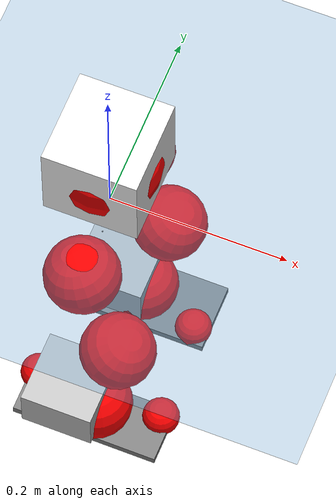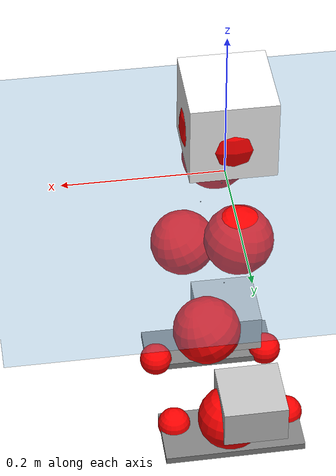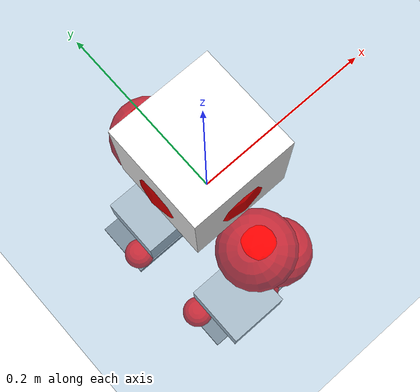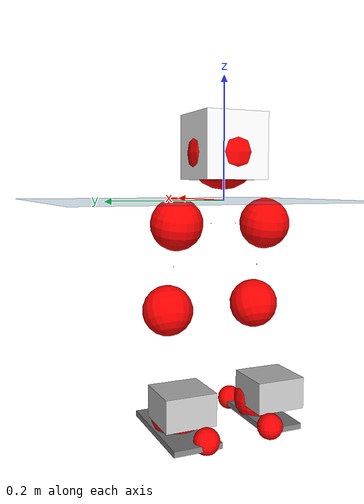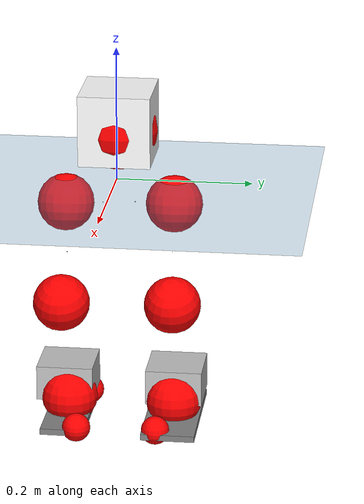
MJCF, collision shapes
<mujoco model="pi_12dof_release_v1">
  <compiler angle="radian" assetdir="assets" balanceinertia="true" inertiafromgeom="false"/>

  <option timestep="0.005" density="1.2" viscosity="2e-05"/>

  <size nkey="1"/>

  <visual>
    <quality shadowsize="8192"/>
    <map shadowclip="0.5"/>
  </visual>

  <default>
    <default class="/">
      <joint armature="0.01" damping="0.01" frictionloss="0.01"/>
      <geom contype="0" conaffinity="0" group="1" solref="-1000 -80"/>
      <site size="0.01 0.005 0.005" group="5"/>
      <general forcelimited="true" biastype="affine" gainprm="20" biasprm="0 -20 -0.5"/>
      <default class="foot">
        <geom size="0.0845 0.036 0.005" type="box" condim="6" group="4" priority="1" friction="0.9 0.2 0.2" solimp="0.015 1 0.005"/>
      </default>
      <default class="reward_collision_sphere">
        <geom group="5" rgba="1 0 0 1"/>
      </default>
    </default>
  </default>

  <asset>
    <texture type="skybox" colorspace="auto" name="//unnamed_texture_0" builtin="gradient" rgb1="0.95 0.95 0.95" rgb2="0.95 0.95 0.95" width="100" height="600"/>
    <texture type="2d" colorspace="auto" name="texplane" builtin="checker" rgb1="0.345 0.575 0.748" rgb2="0.345 0.575 0.748" markrgb="1 1 1" width="512" height="512"/>
    <material name="MatPlane" class="/" texture="texplane" texuniform="true" texrepeat="2 2" specular="0.9"/>
    <mesh name="baselink_1" class="/" file="baselink_1.STL"/>
    <mesh name="r_hip_pitch_link" class="/" file="r_hip_pitch_link.STL"/>
    <mesh name="r_hip_roll_link" class="/" file="r_hip_roll_link.STL"/>
    <mesh name="r_thigh_link" class="/" file="r_thigh_link.STL"/>
    <mesh name="r_calf_link" class="/" file="r_calf_link.STL"/>
    <mesh name="r_ankle_pitch_link" class="/" file="r_ankle_pitch_link.STL"/>
    <mesh name="r_ankle_roll_link" class="/" file="r_ankle_roll_link.STL"/>
    <mesh name="l_hip_pitch_link" class="/" file="l_hip_pitch_link.STL"/>
    <mesh name="l_hip_roll_link" class="/" file="l_hip_roll_link.STL"/>
    <mesh name="l_thigh_link" class="/" file="l_thigh_link.STL"/>
    <mesh name="l_calf_link" class="/" file="l_calf_link.STL"/>
    <mesh name="l_ankle_pitch_link" class="/" file="l_ankle_pitch_link.STL"/>
    <mesh name="l_ankle_roll_link" class="/" file="l_ankle_roll_link.STL"/>
  </asset>

  <worldbody>
    <geom name="floor" class="/" size="100 100 0.125" type="plane" group="0" material="MatPlane"/>
    <light name="toplight_shadow" class="/" pos="0 0 5" dir="0.0990148 0.0990148 -0.990148" type="directional" ambient="0.04 0.04 0.04" diffuse="0.55 0.55 0.55" specular="0.12 0.12 0.12"/>
    <light name="toplight_fill" class="/" pos="0 0 5" dir="0.0990148 0.0990148 -0.990148" type="directional" castshadow="false" ambient="0.04 0.04 0.04" diffuse="0.3 0.3 0.3" specular="0.08 0.08 0.08"/>
    <body name="trunk" pos="-0.00135854 0.00258135 -0.000255233" quat="0.999999 0.00103582 -0.000403402 -0.000461655">
      <inertial pos="0.00223761 -0.0032186 0.0437201" quat="0.697849 0.0146764 0.017134 0.715889" mass="2.6296" diaginertia="0.0147242 0.00915552 0.00620667"/>
      <joint name="//unnamed_joint_0" type="free"/>
      <geom name="//unnamed_geom_1" class="/" type="mesh" density="0" rgba="1 1 1 1" mesh="baselink_1"/>
      <geom name="//unnamed_geom_2" class="/" size="0.0529562 0.0529562 0.0529562" pos="0 0 0.0868214" type="box" rgba="1 1 1 1"/>
      <geom name="//unnamed_geom_3" class="reward_collision_sphere" size="0.0582519" pos="0 0 0.0759687"/>
      <site name="imu" class="/" pos="0.0127343 -0.00701366 0.013126" size="0.0105912"/>
      <camera name="track" class="/" pos="0 -2.00313 0" quat="0.707107 0.707107 0 0" mode="trackcom"/>
      <camera name="ego_camera" class="/" pos="0.0817905 0 0.195348" quat="-0.5 -0.5 0.5 0.5"/>
      <body name="r_hip_pitch_link" pos="0.00106961 -0.0236121 -0.0372024" quat="0.992212 8.32895e-06 -0.124561 0.000406441">
        <inertial pos="0.00315893 -0.0585104 -0.000302838" quat="-0.0170974 0.704369 -0.0285201 0.709055" mass="0.430021" diaginertia="0.00016392 9.87181e-05 0.000124025"/>
        <joint name="r_hip_pitch_joint" class="/" pos="0 0 0" axis="0.00328039 -0.999989 0.00325664" range="-1.79198 1.271" armature="0.0106747" damping="0" frictionloss="0.0106559"/>
        <geom name="//unnamed_geom_4" class="/" type="mesh" density="0" rgba="0.75294 0.75294 0.75294 1" mesh="r_hip_pitch_link"/>
        <geom name="//unnamed_geom_5" class="/" size="0.000529562 0.000529562 0.000529562" type="box" rgba="0.75294 0.75294 0.75294 1"/>
        <body name="r_hip_roll_link" pos="-0.000875921 -0.0550207 -0.00136895" quat="0.999999 -0.000665961 0.000550534 -0.000902341">
          <inertial pos="-0.00170054 0.000988996 -0.0628622" quat="0.698297 -0.0841044 -0.0846824 0.705788" mass="0.445061" diaginertia="0.000494061 0.000271587 0.000188639"/>
          <joint name="r_hip_roll_joint" class="/" pos="0 0 0" axis="-0.999998 0.000575012 0.00182941" range="-0.0913902 0.474633" armature="0.0118538" damping="0.000369028" frictionloss="0.0102901"/>
          <geom name="//unnamed_geom_6" class="/" type="mesh" density="0" rgba="0.75294 0.75294 0.75294 1" mesh="r_hip_roll_link"/>
          <geom name="//unnamed_geom_7" class="/" size="0.000529562 0.000529562 0.000529562" type="box" rgba="0.75294 0.75294 0.75294 1"/>
          <geom name="//unnamed_geom_8" class="reward_collision_sphere" size="0.042365"/>
          <body name="r_thigh_link" pos="-0.000173546 0.00344779 -0.0744516" quat="1 5.41537e-05 -0.000182949 0.000116516">
            <inertial pos="0.00246649 -0.00182383 -0.0516509" quat="0.735379 0.677582 -0.00599956 -0.00810226" mass="0.139086" diaginertia="0.000195866 9.65685e-05 8.96205e-05"/>
            <joint name="r_thigh_joint" class="/" pos="0 0 0" axis="-0.00745376 -0.00576434 -0.999956" stiffness="0.0196641" range="-0.289246 0.545146" armature="0.0103591" damping="0.00482692" frictionloss="0.0093527"/>
            <geom name="//unnamed_geom_9" class="/" type="mesh" density="0" rgba="0.75294 0.75294 0.75294 1" mesh="r_thigh_link"/>
            <geom name="//unnamed_geom_10" class="/" size="0.000529562 0.000529562 0.000529562" type="box" rgba="0.75294 0.75294 0.75294 1"/>
            <body name="r_calf_link" pos="0.00326333 -0.00606749 -0.0756572" quat="0.947666 -3.63103e-05 0.319263 4.29835e-05">
              <inertial pos="-0.00304483 0.00192602 -0.0737514" quat="0.99999 -0.00158913 0.00408751 -0.00126948" mass="0.955364" diaginertia="0.00527062 0.00337348 0.000254538"/>
              <joint name="r_calf_joint" class="/" pos="0 0 0" axis="0.0133451 -0.999886 0.00712429" range="-1.6621 0.645182" armature="0.0116292" damping="0" frictionloss="0.00966616"/>
              <geom name="//unnamed_geom_11" class="/" type="mesh" density="0" rgba="0.75294 0.75294 0.75294 1" mesh="r_calf_link"/>
              <geom name="//unnamed_geom_12" class="/" size="0.000529562 0.000529562 0.000529562" type="box" rgba="0.75294 0.75294 0.75294 1"/>
              <geom name="//unnamed_geom_13" class="reward_collision_sphere" size="0.042365"/>
              <body name="r_ankle_pitch_link" pos="0.000356113 0.000105852 -0.150535" quat="0.980075 0.000126762 -0.198626 -7.36745e-05">
                <inertial pos="0.00309849 -0.000360366 0.00212469" quat="0.00335421 0.70658 -0.00129652 0.707624" mass="0.215502" diaginertia="0.000475501 0.000235865 0.000186767"/>
                <joint name="r_ankle_pitch_joint" class="/" pos="0 0 0" axis="0.0015125 -0.999978 -0.00645956" stiffness="0.000161465" range="-1.24698 0.509122" armature="0.0109304" damping="0.0191515" frictionloss="0.0102414"/>
                <geom name="//unnamed_geom_14" class="/" type="mesh" density="0" rgba="0.75294 0.75294 0.75294 1" mesh="r_ankle_pitch_link"/>
                <geom name="//unnamed_geom_15" class="/" size="0.0413059 0.042365 0.0264781" type="box" rgba="0.75294 0.75294 0.75294 1"/>
                <body name="r_ankle_roll_link" pos="0.0815651 0.00592317 -0.000976585" quat="0.999999 -0.00110029 0.000243569 -0.000951951">
                  <inertial pos="-0.0298614 -0.00097441 -0.016308" quat="0.563495 0.434306 0.426013 0.558896" mass="0.60867" diaginertia="0.00175562 0.00100726 0.000402459"/>
                  <joint name="r_ankle_roll_joint" class="/" pos="0 0 0" axis="-0.999882 -0.00561395 0.0142885" range="-0.159933 0.120942" armature="0.0119285" damping="0" frictionloss="0.00971098"/>
                  <geom name="//unnamed_geom_16" class="/" type="mesh" density="0" rgba="0.75294 0.75294 0.75294 1" mesh="r_ankle_roll_link"/>
                  <geom name="//unnamed_geom_17" class="/" type="mesh" rgba="0.75294 0.75294 0.75294 1" mesh="r_ankle_roll_link"/>
                  <geom name="right_foot" class="foot" size="0.0850056 0.0326359 0.00465208" pos="-0.0556175 0 -0.0477518"/>
                  <geom name="//unnamed_geom_19" class="reward_collision_sphere" size="0.042365" pos="-0.054527 0 -0.0217053"/>
                  <geom name="//unnamed_geom_20" class="reward_collision_sphere" size="0.0211825" pos="0.0163581 0.0200313 -0.0434107"/>
                  <geom name="//unnamed_geom_21" class="reward_collision_sphere" size="0.0211825" pos="-0.130865 0.0200313 -0.0434107"/>
                  <site name="right_foot" class="foot" pos="-0.0556175 0 -0.0477518" size="0.0105912"/>
                </body>
              </body>
            </body>
          </body>
        </body>
      </body>
      <body name="l_hip_pitch_link" pos="-0.00456348 0.0235501 -0.0365109" quat="0.992279 -0.000622507 -0.124025 0.000426263">
        <inertial pos="-0.00135075 0.0580631 -0.000241573" quat="-0.0368292 0.703787 0.025654 0.708991" mass="0.453269" diaginertia="0.000193119 0.000107126 0.000154339"/>
        <joint name="l_hip_pitch_joint" class="/" pos="0 0 0" axis="0.00558431 0.999786 0.0199421" stiffness="0.0127947" range="-1.20992 1.78683" armature="0.0119821" damping="0.0283027" frictionloss="0.0117697"/>
        <geom name="//unnamed_geom_22" class="/" type="mesh" density="0" rgba="0.75294 0.75294 0.75294 1" mesh="l_hip_pitch_link"/>
        <geom name="//unnamed_geom_23" class="/" size="0.000529562 0.000529562 0.000529562" type="box" rgba="0.75294 0.75294 0.75294 1"/>
        <body name="l_hip_roll_link" pos="0.00179296 0.0587801 -0.000514715" quat="0.999999 0.000165034 0.0010682 0.000764631">
          <inertial pos="0.00148058 -0.00248986 -0.0664972" quat="0.698963 -0.0754682 -0.0778178 0.706895" mass="0.477859" diaginertia="0.000511377 0.000281892 0.000203131"/>
          <joint name="l_hip_roll_joint" class="/" pos="0 0 0" axis="-0.999959 -0.00467686 -0.00769017" range="-0.529696 0.159868" armature="0.010304" damping="0" frictionloss="0.00967113"/>
          <geom name="//unnamed_geom_24" class="/" type="mesh" density="0" rgba="0.75294 0.75294 0.75294 1" mesh="l_hip_roll_link"/>
          <geom name="//unnamed_geom_25" class="/" size="0.000529562 0.000529562 0.000529562" type="box" rgba="0.75294 0.75294 0.75294 1"/>
          <geom name="//unnamed_geom_26" class="reward_collision_sphere" size="0.042365"/>
          <body name="l_thigh_link" pos="-0.00132531 -0.000990935 -0.071743" quat="0.999999 -0.000485454 0.00125315 -0.000991819">
            <inertial pos="0.00211662 -0.00137449 -0.0556063" quat="0.681437 0.73186 -0.000639438 -0.00493363" mass="0.135486" diaginertia="0.00019275 9.17175e-05 8.56089e-05"/>
            <joint name="l_thigh_joint" class="/" pos="0 0 0" axis="0.00862664 -0.00919668 -0.99992" range="-0.555648 0.273941" armature="0.0101711" damping="0.00876298" frictionloss="0.0109721"/>
            <geom name="//unnamed_geom_27" class="/" type="mesh" density="0" rgba="0.75294 0.75294 0.75294 1" mesh="l_thigh_link"/>
            <geom name="//unnamed_geom_28" class="/" size="0.000529562 0.000529562 0.000529562" type="box" rgba="0.75294 0.75294 0.75294 1"/>
            <body name="l_calf_link" pos="0.00213661 0.00256355 -0.0787723" quat="0.947247 8.98746e-05 0.320504 0.000350394">
              <inertial pos="0.00101772 0.0055645 -0.0749036" quat="0.99994 -0.00733085 -0.00673477 0.00455841" mass="0.945356" diaginertia="0.00541301 0.0034909 0.000260827"/>
              <joint name="l_calf_joint" class="/" pos="0 0 0" axis="0.00642823 0.999976 0.00246446" range="-0.633477 1.70348" armature="0.010301" damping="0.00942798" frictionloss="0.0109088"/>
              <geom name="//unnamed_geom_29" class="/" type="mesh" density="0" rgba="0.75294 0.75294 0.75294 1" mesh="l_calf_link"/>
              <geom name="//unnamed_geom_30" class="/" size="0.000529562 0.000529562 0.000529562" type="box" rgba="0.75294 0.75294 0.75294 1"/>
              <geom name="//unnamed_geom_31" class="reward_collision_sphere" size="0.042365"/>
              <body name="l_ankle_pitch_link" pos="0.00195262 -0.000503618 -0.153745" quat="0.979897 0.000992584 -0.1995 -0.000237972">
                <inertial pos="0.00819106 -0.0010386 0.00239977" quat="-0.0109185 0.70106 -0.010362 0.712944" mass="0.200416" diaginertia="0.000471548 0.000219608 0.000170296"/>
                <joint name="l_ankle_pitch_joint" class="/" pos="0 0 0" axis="-0.0131687 0.999913 0.000281735" stiffness="0.0102395" range="-0.485949 1.32781" armature="0.00909638" damping="0.0103771" frictionloss="0.0116723"/>
                <geom name="//unnamed_geom_32" class="/" type="mesh" density="0" rgba="0.75294 0.75294 0.75294 1" mesh="l_ankle_pitch_link"/>
                <geom name="//unnamed_geom_33" class="/" size="0.0413059 0.042365 0.0264781" type="box" rgba="0.75294 0.75294 0.75294 1"/>
                <body name="l_ankle_roll_link" pos="0.0808346 -0.000883978 -0.000689035" quat="1 -9.89786e-05 0.000343833 0.000218515">
                  <inertial pos="-0.0248184 0.00323877 -0.0179474" quat="0.559857 0.430703 0.434186 0.55905" mass="0.605233" diaginertia="0.00170683 0.00101771 0.000422737"/>
                  <joint name="l_ankle_roll_joint" class="/" pos="0 0 0" axis="-0.999905 -0.0129283 -0.00477826" range="-0.109321 0.126108" armature="0.0114144" damping="0" frictionloss="0.00997225"/>
                  <geom name="//unnamed_geom_34" class="/" type="mesh" density="0" rgba="0.75294 0.75294 0.75294 1" mesh="l_ankle_roll_link"/>
                  <geom name="//unnamed_geom_35" class="/" type="mesh" rgba="0.75294 0.75294 0.75294 1" mesh="l_ankle_roll_link"/>
                  <geom name="left_foot" class="foot" size="0.0903414 0.0401722 0.00471212" pos="-0.0556175 0 -0.0477518"/>
                  <geom name="//unnamed_geom_37" class="reward_collision_sphere" size="0.042365" pos="-0.054527 0 -0.0217053"/>
                  <geom name="//unnamed_geom_38" class="reward_collision_sphere" size="0.0211825" pos="0.0163581 -0.0200313 -0.0434107"/>
                  <geom name="//unnamed_geom_39" class="reward_collision_sphere" size="0.0211825" pos="-0.130865 -0.0200313 -0.0434107"/>
                  <site name="left_foot" class="foot" pos="-0.0556175 0 -0.0477518" size="0.0105912"/>
                </body>
              </body>
            </body>
          </body>
        </body>
      </body>
    </body>
  </worldbody>

  <contact>
    <pair class="/" geom1="floor" geom2="right_foot" name="//unnamed_contact_1"/>
    <pair class="/" geom1="floor" geom2="left_foot" name="//unnamed_contact_0"/>
  </contact>

  <actuator>
    <general name="r_hip_pitch_joint" class="/" joint="r_hip_pitch_joint" forcerange="-24.3485 24.3485" gainprm="21.6865" biasprm="0 -21.6865 -0.510269"/>
    <general name="r_hip_roll_joint" class="/" joint="r_hip_roll_joint" forcerange="-20.8349 20.8349" gainprm="21.6865" biasprm="0 -21.6865 -0.510269"/>
    <general name="r_thigh_joint" class="/" joint="r_thigh_joint" forcerange="-20.1594 20.1594" gainprm="21.6865" biasprm="0 -21.6865 -0.510269"/>
    <general name="r_calf_joint" class="/" joint="r_calf_joint" forcerange="-19.8816 19.8816" gainprm="21.6865" biasprm="0 -21.6865 -0.510269"/>
    <general name="r_ankle_pitch_joint" class="/" joint="r_ankle_pitch_joint" forcerange="-20.1078 20.1078" gainprm="21.6865" biasprm="0 -21.6865 -0.510269"/>
    <general name="r_ankle_roll_joint" class="/" joint="r_ankle_roll_joint" forcerange="-24.3738 24.3738" gainprm="21.6865" biasprm="0 -21.6865 -0.510269"/>
    <general name="l_hip_pitch_joint" class="/" joint="l_hip_pitch_joint" forcerange="-22.3973 22.3973" gainprm="21.6865" biasprm="0 -21.6865 -0.510269"/>
    <general name="l_hip_roll_joint" class="/" joint="l_hip_roll_joint" forcerange="-22.7864 22.7864" gainprm="21.6865" biasprm="0 -21.6865 -0.510269"/>
    <general name="l_thigh_joint" class="/" joint="l_thigh_joint" forcerange="-24.32 24.32" gainprm="21.6865" biasprm="0 -21.6865 -0.510269"/>
    <general name="l_calf_joint" class="/" joint="l_calf_joint" forcerange="-22.5688 22.5688" gainprm="21.6865" biasprm="0 -21.6865 -0.510269"/>
    <general name="l_ankle_pitch_joint" class="/" joint="l_ankle_pitch_joint" forcerange="-23.1455 23.1455" gainprm="21.6865" biasprm="0 -21.6865 -0.510269"/>
    <general name="l_ankle_roll_joint" class="/" joint="l_ankle_roll_joint" forcerange="-23.5822 23.5822" gainprm="21.6865" biasprm="0 -21.6865 -0.510269"/>
  </actuator>

  <sensor>
    <gyro site="imu" name="imu_angular_velocity"/>
    <velocimeter site="imu" name="imu_linear_velocity"/>
    <framelinvel objtype="site" objname="left_foot" name="left_foot_global_linear_velocity"/>
    <framelinvel objtype="site" objname="right_foot" name="right_foot_global_linear_velocity"/>
  </sensor>

  <keyframe>
    <key name="home" qpos="0 0 0.291 1 0 0 0 0.4 0 0 -0.8 0.4 0 -0.4 0 0 0.8 -0.4 0"/>
  </keyframe>
</mujoco>
